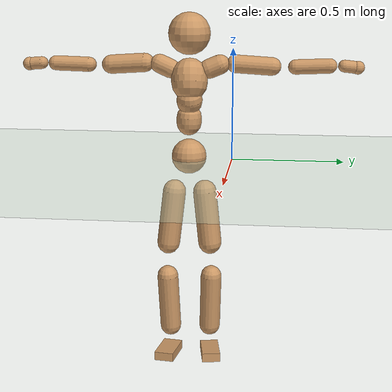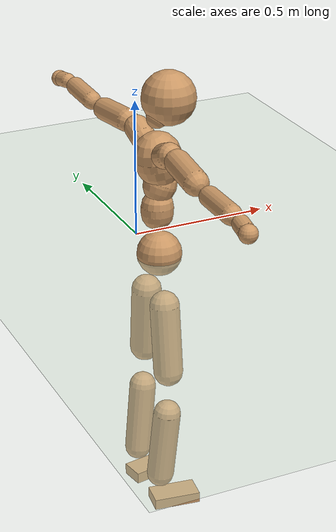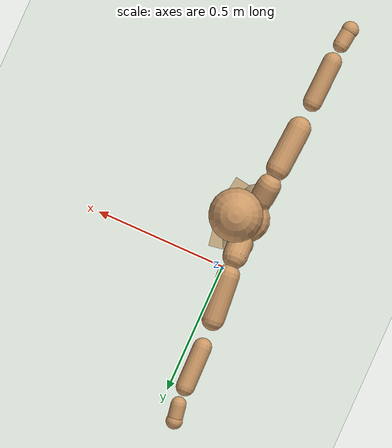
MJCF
<mujoco model="humanoid">
  <compiler coordinate="local" angle="radian"/>
  <default>
    <joint damping="0.0" armature="0.01" stiffness="0.0" limited="true"/>
    <geom conaffinity="1" condim="3" contype="7" margin="0.001" rgba="0.8 0.6 .4 1"/>
  </default>
  <asset>
    <texture type="skybox" builtin="gradient" rgb1=".4 .5 .6" rgb2="0 0 0" width="100" height="100"/>
    <texture builtin="flat" height="1278" mark="cross" markrgb="1 1 1" name="texgeom" random="0.01" rgb1="0.8 0.6 0.4" rgb2="0.8 0.6 0.4" type="cube" width="127"/>
    <texture builtin="checker" height="100" name="texplane" rgb1="0 0 0" rgb2="0.8 0.8 0.8" type="2d" width="100"/>
    <material name="MatPlane" reflectance="0.5" shininess="1" specular="1" texrepeat="60 60" texture="texplane"/>
    <material name="geom" texture="texgeom" texuniform="true"/>
  </asset>
  <worldbody>
    <light cutoff="100" diffuse="1 1 1" dir="-0 0 -1.3" directional="true" exponent="1" pos="0 0 1.3" specular=".1 .1 .1"/>
    <geom conaffinity="1" condim="3" name="floor" pos="0 0 0" rgba="0.8 0.9 0.8 1" size="100 100 .2" type="plane" material="MatPlane"/>
    <body name="Pelvis" pos="-0.0014 -0.1965 0.0108">
      <freejoint name="Pelvis"/>
      <geom type="sphere" contype="1" conaffinity="1" density="500" size="0.0793" pos="0.0000 0.0000 0.0000" name="Pelvis"/>
      <body name="L_Hip" pos="-0.0182 0.0623 -0.0873">
        <joint name="L_Hip_x" type="hinge" pos="0 0 0" axis="1 0 0" stiffness="800" damping="80" armature="0.02" range="-180.0000 180.0000"/>
        <joint name="L_Hip_y" type="hinge" pos="0 0 0" axis="0 1 0" stiffness="800" damping="80" armature="0.02" range="-180.0000 180.0000"/>
        <joint name="L_Hip_z" type="hinge" pos="0 0 0" axis="0 0 1" stiffness="800" damping="80" armature="0.02" range="-180.0000 180.0000"/>
        <geom type="capsule" contype="1" conaffinity="1" density="500" fromto="0.0009 0.0084 -0.0812 0.0037 0.0334 -0.3247" size="0.0534" name="L_Hip"/>
        <body name="L_Knee" pos="0.0046 0.0418 -0.4058">
          <joint name="L_Knee_x" type="hinge" pos="0 0 0" axis="1 0 0" stiffness="800" damping="80" armature="0.02" range="-180.0000 180.0000"/>
          <joint name="L_Knee_y" type="hinge" pos="0 0 0" axis="0 1 0" stiffness="800" damping="80" armature="0.02" range="-180.0000 180.0000"/>
          <joint name="L_Knee_z" type="hinge" pos="0 0 0" axis="0 0 1" stiffness="800" damping="80" armature="0.02" range="-180.0000 180.0000"/>
          <geom type="capsule" contype="1" conaffinity="1" density="500" fromto="-0.0082 -0.0027 -0.0854 -0.0327 -0.0106 -0.3414" size="0.0484" name="L_Knee"/>
          <body name="L_Ankle" pos="-0.0408 -0.0133 -0.4268">
            <joint name="L_Ankle_x" type="hinge" pos="0 0 0" axis="1 0 0" stiffness="800" damping="80" armature="0.02" range="-180.0000 180.0000"/>
            <joint name="L_Ankle_y" type="hinge" pos="0 0 0" axis="0 1 0" stiffness="800" damping="80" armature="0.02" range="-180.0000 180.0000"/>
            <joint name="L_Ankle_z" type="hinge" pos="0 0 0" axis="0 0 1" stiffness="800" damping="80" armature="0.02" range="-180.0000 180.0000"/>
            <geom type="box" contype="1" conaffinity="1" density="500" pos="0.0593 0.0098 -0.0293" size="0.082 0.0417 0.0208" quat="0.9967 0.0000 0.0000 0.0815" name="L_Ankle"/>
            <body name="L_Toe" pos="0.1186 0.0195 -0.0586">
              <joint name="L_Toe_x" type="hinge" pos="0 0 0" axis="1 0 0" stiffness="500" damping="50" armature="0.02" range="-180.0000 180.0000"/>
              <joint name="L_Toe_y" type="hinge" pos="0 0 0" axis="0 1 0" stiffness="500" damping="50" armature="0.02" range="-180.0000 180.0000"/>
              <joint name="L_Toe_z" type="hinge" pos="0 0 0" axis="0 0 1" stiffness="500" damping="50" armature="0.02" range="-180.0000 180.0000"/>
              <geom type="box" contype="1" conaffinity="1" density="500" pos="0.0000 0.0000 0.0294" size="0.0008 0.0021 0.001" quat="0.9961 0.0000 0.0000 0.0882" name="L_Toe"/>
            </body>
          </body>
        </body>
      </body>
      <body name="R_Hip" pos="-0.0132 -0.0602 -0.0856">
        <joint name="R_Hip_x" type="hinge" pos="0 0 0" axis="1 0 0" stiffness="800" damping="80" armature="0.02" range="-180.0000 180.0000"/>
        <joint name="R_Hip_y" type="hinge" pos="0 0 0" axis="0 1 0" stiffness="800" damping="80" armature="0.02" range="-180.0000 180.0000"/>
        <joint name="R_Hip_z" type="hinge" pos="0 0 0" axis="0 0 1" stiffness="800" damping="80" armature="0.02" range="-180.0000 180.0000"/>
        <geom type="capsule" contype="1" conaffinity="1" density="500" fromto="0.0002 -0.0095 -0.0830 0.0010 -0.0380 -0.3319" size="0.0525" name="R_Hip"/>
        <body name="R_Knee" pos="0.0012 -0.0475 -0.4148">
          <joint name="R_Knee_x" type="hinge" pos="0 0 0" axis="1 0 0" stiffness="800" damping="80" armature="0.02" range="-180.0000 180.0000"/>
          <joint name="R_Knee_y" type="hinge" pos="0 0 0" axis="0 1 0" stiffness="800" damping="80" armature="0.02" range="-180.0000 180.0000"/>
          <joint name="R_Knee_z" type="hinge" pos="0 0 0" axis="0 0 1" stiffness="800" damping="80" armature="0.02" range="-180.0000 180.0000"/>
          <geom type="capsule" contype="1" conaffinity="1" density="500" fromto="-0.0075 0.0035 -0.0852 -0.0298 0.0140 -0.3410" size="0.0489" name="R_Knee"/>
          <body name="R_Ankle" pos="-0.0373 0.0175 -0.4262">
            <joint name="R_Ankle_x" type="hinge" pos="0 0 0" axis="1 0 0" stiffness="800" damping="80" armature="0.02" range="-180.0000 180.0000"/>
            <joint name="R_Ankle_y" type="hinge" pos="0 0 0" axis="0 1 0" stiffness="800" damping="80" armature="0.02" range="-180.0000 180.0000"/>
            <joint name="R_Ankle_z" type="hinge" pos="0 0 0" axis="0 0 1" stiffness="800" damping="80" armature="0.02" range="-180.0000 180.0000"/>
            <geom type="box" contype="1" conaffinity="1" density="500" pos="0.0608 -0.0085 -0.0249" size="0.0845 0.0448 0.0199" quat="0.9976 0.0000 0.0000 -0.0698" name="R_Ankle"/>
            <body name="R_Toe" pos="0.1216 -0.0171 -0.0499">
              <joint name="R_Toe_x" type="hinge" pos="0 0 0" axis="1 0 0" stiffness="500" damping="50" armature="0.02" range="-180.0000 180.0000"/>
              <joint name="R_Toe_y" type="hinge" pos="0 0 0" axis="0 1 0" stiffness="500" damping="50" armature="0.02" range="-180.0000 180.0000"/>
              <joint name="R_Toe_z" type="hinge" pos="0 0 0" axis="0 0 1" stiffness="500" damping="50" armature="0.02" range="-180.0000 180.0000"/>
              <geom type="box" contype="1" conaffinity="1" density="500" pos="0.0000 0.0000 0.0273" size="0.0008 0.0021 0.0011" quat="0.9982 0.0000 0.0000 -0.0607" name="R_Toe"/>
            </body>
          </body>
        </body>
      </body>
      <body name="Torso" pos="-0.0093 -0.0027 0.099">
        <joint name="Torso_x" type="hinge" pos="0 0 0" axis="1 0 0" stiffness="1000" damping="100" armature="0.02" range="-180.0000 180.0000"/>
        <joint name="Torso_y" type="hinge" pos="0 0 0" axis="0 1 0" stiffness="1000" damping="100" armature="0.02" range="-180.0000 180.0000"/>
        <joint name="Torso_z" type="hinge" pos="0 0 0" axis="0 0 1" stiffness="1000" damping="100" armature="0.02" range="-180.0000 180.0000"/>
        <geom type="capsule" contype="1" conaffinity="1" density="500" fromto="0.0022 0.0025 0.0797 0.0015 0.0017 0.0531" size="0.0561" name="Torso"/>
        <body name="Spine" pos="0.0037 0.0042 0.1328">
          <joint name="Spine_x" type="hinge" pos="0 0 0" axis="1 0 0" stiffness="1000" damping="100" armature="0.02" range="-180.0000 180.0000"/>
          <joint name="Spine_y" type="hinge" pos="0 0 0" axis="0 1 0" stiffness="1000" damping="100" armature="0.02" range="-180.0000 180.0000"/>
          <joint name="Spine_z" type="hinge" pos="0 0 0" axis="0 0 1" stiffness="1000" damping="100" armature="0.02" range="-180.0000 180.0000"/>
          <geom type="capsule" contype="1" conaffinity="1" density="500" fromto="0.0118 0.0011 0.0291 0.0078 0.0008 0.0194" size="0.0581" name="Spine"/>
          <body name="Chest" pos="0.0196 0.0019 0.0485">
            <joint name="Chest_x" type="hinge" pos="0 0 0" axis="1 0 0" stiffness="1000" damping="100" armature="0.02" range="-180.0000 180.0000"/>
            <joint name="Chest_y" type="hinge" pos="0 0 0" axis="0 1 0" stiffness="1000" damping="100" armature="0.02" range="-180.0000 180.0000"/>
            <joint name="Chest_z" type="hinge" pos="0 0 0" axis="0 0 1" stiffness="1000" damping="100" armature="0.02" range="-180.0000 180.0000"/>
            <geom type="capsule" contype="1" conaffinity="1" density="500" fromto="-0.0193 -0.0015 0.0838 -0.0129 -0.0010 0.0559" size="0.0817" name="Chest"/>
            <body name="Neck" pos="-0.0321 -0.0047 0.2026">
              <joint name="Neck_x" type="hinge" pos="0 0 0" axis="1 0 0" stiffness="500" damping="50" armature="0.02" range="-180.0000 180.0000"/>
              <joint name="Neck_y" type="hinge" pos="0 0 0" axis="0 1 0" stiffness="500" damping="50" armature="0.02" range="-180.0000 180.0000"/>
              <joint name="Neck_z" type="hinge" pos="0 0 0" axis="0 0 1" stiffness="500" damping="50" armature="0.02" range="-180.0000 180.0000"/>
              <geom type="capsule" contype="1" conaffinity="1" density="500" fromto="0.0113 0.0015 0.0148 0.0451 0.0061 0.0590" size="0.0378" name="Neck"/>
              <body name="Head" pos="0.0564 0.0077 0.0738">
                <joint name="Head_x" type="hinge" pos="0 0 0" axis="1 0 0" stiffness="500" damping="50" armature="0.02" range="-180.0000 180.0000"/>
                <joint name="Head_y" type="hinge" pos="0 0 0" axis="0 1 0" stiffness="500" damping="50" armature="0.02" range="-180.0000 180.0000"/>
                <joint name="Head_z" type="hinge" pos="0 0 0" axis="0 0 1" stiffness="500" damping="50" armature="0.02" range="-180.0000 180.0000"/>
                <geom type="sphere" contype="1" conaffinity="1" density="500" size="0.0937" pos="0.0000 0.0000 0.0000" name="Head"/>
              </body>
            </body>
            <body name="L_Thorax" pos="-0.03 0.0694 0.1094">
              <joint name="L_Thorax_x" type="hinge" pos="0 0 0" axis="1 0 0" stiffness="500" damping="50" armature="0.02" range="-180.0000 180.0000"/>
              <joint name="L_Thorax_y" type="hinge" pos="0 0 0" axis="0 1 0" stiffness="500" damping="50" armature="0.02" range="-180.0000 180.0000"/>
              <joint name="L_Thorax_z" type="hinge" pos="0 0 0" axis="0 0 1" stiffness="500" damping="50" armature="0.02" range="-180.0000 180.0000"/>
              <geom type="capsule" contype="1" conaffinity="1" density="500" fromto="-0.0007 0.0160 0.0067 -0.0026 0.0641 0.0266" size="0.0442" name="L_Thorax"/>
              <body name="L_Shoulder" pos="-0.0033 0.0801 0.0333">
                <joint name="L_Shoulder_x" type="hinge" pos="0 0 0" axis="1 0 0" stiffness="500" damping="50" armature="0.02" range="-720.0000 720.0000"/>
                <joint name="L_Shoulder_y" type="hinge" pos="0 0 0" axis="0 1 0" stiffness="500" damping="50" armature="0.02" range="-720.0000 720.0000"/>
                <joint name="L_Shoulder_z" type="hinge" pos="0 0 0" axis="0 0 1" stiffness="500" damping="50" armature="0.02" range="-720.0000 720.0000"/>
                <geom type="capsule" contype="1" conaffinity="1" density="500" fromto="-0.0048 0.0538 -0.0037 -0.0193 0.2152 -0.0150" size="0.0406" name="L_Shoulder"/>
                <body name="L_Elbow" pos="-0.0242 0.2691 -0.0187">
                  <joint name="L_Elbow_x" type="hinge" pos="0 0 0" axis="1 0 0" stiffness="500" damping="50" armature="0.02" range="-720.0000 720.0000"/>
                  <joint name="L_Elbow_y" type="hinge" pos="0 0 0" axis="0 1 0" stiffness="500" damping="50" armature="0.02" range="-720.0000 720.0000"/>
                  <joint name="L_Elbow_z" type="hinge" pos="0 0 0" axis="0 0 1" stiffness="500" damping="50" armature="0.02" range="-720.0000 720.0000"/>
                  <geom type="capsule" contype="1" conaffinity="1" density="500" fromto="-0.0007 0.0499 0.0021 -0.0026 0.1997 0.0083" size="0.0333" name="L_Elbow"/>
                  <body name="L_Wrist" pos="-0.0033 0.2496 0.0103">
                    <joint name="L_Wrist_x" type="hinge" pos="0 0 0" axis="1 0 0" stiffness="300" damping="30" armature="0.02" range="-180.0000 180.0000"/>
                    <joint name="L_Wrist_y" type="hinge" pos="0 0 0" axis="0 1 0" stiffness="300" damping="30" armature="0.02" range="-180.0000 180.0000"/>
                    <joint name="L_Wrist_z" type="hinge" pos="0 0 0" axis="0 0 1" stiffness="300" damping="30" armature="0.02" range="-180.0000 180.0000"/>
                    <geom type="capsule" contype="1" conaffinity="1" density="500" fromto="-0.0026 0.0150 -0.0019 -0.0102 0.0599 -0.0076" size="0.0276" name="L_Wrist"/>
                    <body name="L_Hand" pos="-0.0128 0.0748 -0.0095">
                      <joint name="L_Hand_x" type="hinge" pos="0 0 0" axis="1 0 0" stiffness="300" damping="30" armature="0.02" range="-180.0000 180.0000"/>
                      <joint name="L_Hand_y" type="hinge" pos="0 0 0" axis="0 1 0" stiffness="300" damping="30" armature="0.02" range="-180.0000 180.0000"/>
                      <joint name="L_Hand_z" type="hinge" pos="0 0 0" axis="0 0 1" stiffness="300" damping="30" armature="0.02" range="-180.0000 180.0000"/>
                      <geom type="sphere" contype="1" conaffinity="1" density="500" size="0.0300" pos="0.0000 0.0000 0.0000" name="L_Hand"/>
                    </body>
                  </body>
                </body>
              </body>
            </body>
            <body name="R_Thorax" pos="-0.0343 -0.0721 0.1072">
              <joint name="R_Thorax_x" type="hinge" pos="0 0 0" axis="1 0 0" stiffness="500" damping="50" armature="0.02" range="-180.0000 180.0000"/>
              <joint name="R_Thorax_y" type="hinge" pos="0 0 0" axis="0 1 0" stiffness="500" damping="50" armature="0.02" range="-180.0000 180.0000"/>
              <joint name="R_Thorax_z" type="hinge" pos="0 0 0" axis="0 0 1" stiffness="500" damping="50" armature="0.02" range="-180.0000 180.0000"/>
              <geom type="capsule" contype="1" conaffinity="1" density="500" fromto="-0.0014 -0.0166 0.0071 -0.0055 -0.0665 0.0286" size="0.043" name="R_Thorax"/>
              <body name="R_Shoulder" pos="-0.0069 -0.0831 0.0357">
                <joint name="R_Shoulder_x" type="hinge" pos="0 0 0" axis="1 0 0" stiffness="500" damping="50" armature="0.02" range="-720.0000 720.0000"/>
                <joint name="R_Shoulder_y" type="hinge" pos="0 0 0" axis="0 1 0" stiffness="500" damping="50" armature="0.02" range="-720.0000 720.0000"/>
                <joint name="R_Shoulder_z" type="hinge" pos="0 0 0" axis="0 0 1" stiffness="500" damping="50" armature="0.02" range="-720.0000 720.0000"/>
                <geom type="capsule" contype="1" conaffinity="1" density="500" fromto="-0.0034 -0.0519 -0.0036 -0.0136 -0.2076 -0.0146" size="0.0427" name="R_Shoulder"/>
                <body name="R_Elbow" pos="-0.017 -0.2595 -0.0182">
                  <joint name="R_Elbow_x" type="hinge" pos="0 0 0" axis="1 0 0" stiffness="500" damping="50" armature="0.02" range="-720.0000 720.0000"/>
                  <joint name="R_Elbow_y" type="hinge" pos="0 0 0" axis="0 1 0" stiffness="500" damping="50" armature="0.02" range="-720.0000 720.0000"/>
                  <joint name="R_Elbow_z" type="hinge" pos="0 0 0" axis="0 0 1" stiffness="500" damping="50" armature="0.02" range="-720.0000 720.0000"/>
                  <geom type="capsule" contype="1" conaffinity="1" density="500" fromto="-0.0019 -0.0518 0.0012 -0.0074 -0.2073 0.0050" size="0.0338" name="R_Elbow"/>
                  <body name="R_Wrist" pos="-0.0093 -0.2591 0.0062">
                    <joint name="R_Wrist_x" type="hinge" pos="0 0 0" axis="1 0 0" stiffness="300" damping="30" armature="0.02" range="-180.0000 180.0000"/>
                    <joint name="R_Wrist_y" type="hinge" pos="0 0 0" axis="0 1 0" stiffness="300" damping="30" armature="0.02" range="-180.0000 180.0000"/>
                    <joint name="R_Wrist_z" type="hinge" pos="0 0 0" axis="0 0 1" stiffness="300" damping="30" armature="0.02" range="-180.0000 180.0000"/>
                    <geom type="capsule" contype="1" conaffinity="1" density="500" fromto="-0.0019 -0.0152 -0.0014 -0.0077 -0.0610 -0.0056" size="0.0285" name="R_Wrist"/>
                    <body name="R_Hand" pos="-0.0097 -0.0762 -0.007">
                      <joint name="R_Hand_x" type="hinge" pos="0 0 0" axis="1 0 0" stiffness="300" damping="30" armature="0.02" range="-180.0000 180.0000"/>
                      <joint name="R_Hand_y" type="hinge" pos="0 0 0" axis="0 1 0" stiffness="300" damping="30" armature="0.02" range="-180.0000 180.0000"/>
                      <joint name="R_Hand_z" type="hinge" pos="0 0 0" axis="0 0 1" stiffness="300" damping="30" armature="0.02" range="-180.0000 180.0000"/>
                      <geom type="sphere" contype="1" conaffinity="1" density="500" size="0.0304" pos="0.0000 0.0000 0.0000" name="R_Hand"/>
                    </body>
                  </body>
                </body>
              </body>
            </body>
          </body>
        </body>
      </body>
    </body>
  </worldbody>
  <actuator>
    <motor name="L_Hip_x" joint="L_Hip_x" gear="500"/>
    <motor name="L_Hip_y" joint="L_Hip_y" gear="500"/>
    <motor name="L_Hip_z" joint="L_Hip_z" gear="500"/>
    <motor name="L_Knee_x" joint="L_Knee_x" gear="500"/>
    <motor name="L_Knee_y" joint="L_Knee_y" gear="500"/>
    <motor name="L_Knee_z" joint="L_Knee_z" gear="500"/>
    <motor name="L_Ankle_x" joint="L_Ankle_x" gear="500"/>
    <motor name="L_Ankle_y" joint="L_Ankle_y" gear="500"/>
    <motor name="L_Ankle_z" joint="L_Ankle_z" gear="500"/>
    <motor name="L_Toe_x" joint="L_Toe_x" gear="500"/>
    <motor name="L_Toe_y" joint="L_Toe_y" gear="500"/>
    <motor name="L_Toe_z" joint="L_Toe_z" gear="500"/>
    <motor name="R_Hip_x" joint="R_Hip_x" gear="500"/>
    <motor name="R_Hip_y" joint="R_Hip_y" gear="500"/>
    <motor name="R_Hip_z" joint="R_Hip_z" gear="500"/>
    <motor name="R_Knee_x" joint="R_Knee_x" gear="500"/>
    <motor name="R_Knee_y" joint="R_Knee_y" gear="500"/>
    <motor name="R_Knee_z" joint="R_Knee_z" gear="500"/>
    <motor name="R_Ankle_x" joint="R_Ankle_x" gear="500"/>
    <motor name="R_Ankle_y" joint="R_Ankle_y" gear="500"/>
    <motor name="R_Ankle_z" joint="R_Ankle_z" gear="500"/>
    <motor name="R_Toe_x" joint="R_Toe_x" gear="500"/>
    <motor name="R_Toe_y" joint="R_Toe_y" gear="500"/>
    <motor name="R_Toe_z" joint="R_Toe_z" gear="500"/>
    <motor name="Torso_x" joint="Torso_x" gear="500"/>
    <motor name="Torso_y" joint="Torso_y" gear="500"/>
    <motor name="Torso_z" joint="Torso_z" gear="500"/>
    <motor name="Spine_x" joint="Spine_x" gear="500"/>
    <motor name="Spine_y" joint="Spine_y" gear="500"/>
    <motor name="Spine_z" joint="Spine_z" gear="500"/>
    <motor name="Chest_x" joint="Chest_x" gear="500"/>
    <motor name="Chest_y" joint="Chest_y" gear="500"/>
    <motor name="Chest_z" joint="Chest_z" gear="500"/>
    <motor name="Neck_x" joint="Neck_x" gear="500"/>
    <motor name="Neck_y" joint="Neck_y" gear="500"/>
    <motor name="Neck_z" joint="Neck_z" gear="500"/>
    <motor name="Head_x" joint="Head_x" gear="500"/>
    <motor name="Head_y" joint="Head_y" gear="500"/>
    <motor name="Head_z" joint="Head_z" gear="500"/>
    <motor name="L_Thorax_x" joint="L_Thorax_x" gear="500"/>
    <motor name="L_Thorax_y" joint="L_Thorax_y" gear="500"/>
    <motor name="L_Thorax_z" joint="L_Thorax_z" gear="500"/>
    <motor name="L_Shoulder_x" joint="L_Shoulder_x" gear="500"/>
    <motor name="L_Shoulder_y" joint="L_Shoulder_y" gear="500"/>
    <motor name="L_Shoulder_z" joint="L_Shoulder_z" gear="500"/>
    <motor name="L_Elbow_x" joint="L_Elbow_x" gear="500"/>
    <motor name="L_Elbow_y" joint="L_Elbow_y" gear="500"/>
    <motor name="L_Elbow_z" joint="L_Elbow_z" gear="500"/>
    <motor name="L_Wrist_x" joint="L_Wrist_x" gear="500"/>
    <motor name="L_Wrist_y" joint="L_Wrist_y" gear="500"/>
    <motor name="L_Wrist_z" joint="L_Wrist_z" gear="500"/>
    <motor name="L_Hand_x" joint="L_Hand_x" gear="500"/>
    <motor name="L_Hand_y" joint="L_Hand_y" gear="500"/>
    <motor name="L_Hand_z" joint="L_Hand_z" gear="500"/>
    <motor name="R_Thorax_x" joint="R_Thorax_x" gear="500"/>
    <motor name="R_Thorax_y" joint="R_Thorax_y" gear="500"/>
    <motor name="R_Thorax_z" joint="R_Thorax_z" gear="500"/>
    <motor name="R_Shoulder_x" joint="R_Shoulder_x" gear="500"/>
    <motor name="R_Shoulder_y" joint="R_Shoulder_y" gear="500"/>
    <motor name="R_Shoulder_z" joint="R_Shoulder_z" gear="500"/>
    <motor name="R_Elbow_x" joint="R_Elbow_x" gear="500"/>
    <motor name="R_Elbow_y" joint="R_Elbow_y" gear="500"/>
    <motor name="R_Elbow_z" joint="R_Elbow_z" gear="500"/>
    <motor name="R_Wrist_x" joint="R_Wrist_x" gear="500"/>
    <motor name="R_Wrist_y" joint="R_Wrist_y" gear="500"/>
    <motor name="R_Wrist_z" joint="R_Wrist_z" gear="500"/>
    <motor name="R_Hand_x" joint="R_Hand_x" gear="500"/>
    <motor name="R_Hand_y" joint="R_Hand_y" gear="500"/>
    <motor name="R_Hand_z" joint="R_Hand_z" gear="500"/>
  </actuator>
  <contact>
    <exclude body1="Torso" body2="Chest"/>
    <exclude body1="Head" body2="Chest"/>
    <exclude body1="R_Knee" body2="R_Toe"/>
    <exclude body1="R_Knee" body2="L_Ankle"/>
    <exclude body1="R_Knee" body2="L_Toe"/>
    <exclude body1="L_Knee" body2="L_Toe"/>
    <exclude body1="L_Knee" body2="R_Ankle"/>
    <exclude body1="L_Knee" body2="R_Toe"/>
    <exclude body1="L_Shoulder" body2="Chest"/>
    <exclude body1="R_Shoulder" body2="Chest"/>
  </contact>
  <sensor/>
  <size njmax="700" nconmax="700"/>
</mujoco>
